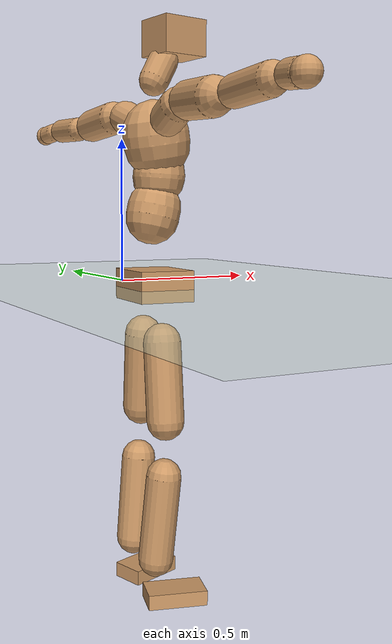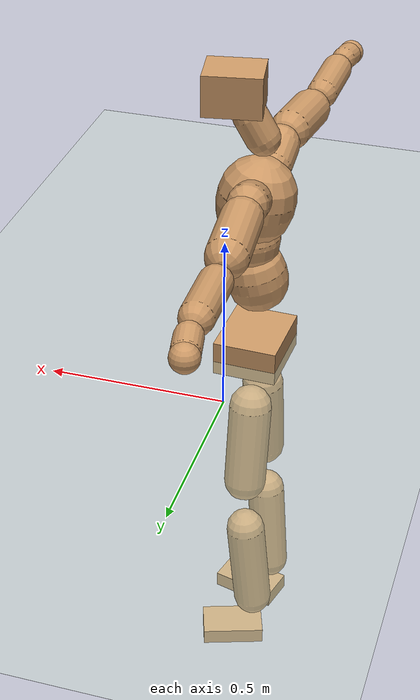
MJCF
<mujoco model="humanoid">
  <compiler coordinate="local" angle="radian"/>
  <default>
    <joint damping="0.0" armature="0.01" stiffness="0.0" limited="true"/>
    <geom conaffinity="1" condim="3" contype="7" margin="0.001" rgba="0.8 0.6 .4 1"/>
  </default>
  <asset>
    <texture type="skybox" builtin="gradient" rgb1=".4 .5 .6" rgb2="0 0 0" width="100" height="100"/>
    <texture builtin="flat" height="1278" mark="cross" markrgb="1 1 1" name="texgeom" random="0.01" rgb1="0.8 0.6 0.4" rgb2="0.8 0.6 0.4" type="cube" width="127"/>
    <texture builtin="checker" height="100" name="texplane" rgb1="0 0 0" rgb2="0.8 0.8 0.8" type="2d" width="100"/>
    <material name="MatPlane" reflectance="0.5" shininess="1" specular="1" texrepeat="60 60" texture="texplane"/>
    <material name="geom" texture="texgeom" texuniform="true"/>
  </asset>
  <worldbody>
    <light cutoff="100" diffuse="1 1 1" dir="-0 0 -1.3" directional="true" exponent="1" pos="0 0 1.3" specular=".1 .1 .1"/>
    <geom conaffinity="1" condim="3" name="floor" pos="0 0 0" rgba="0.8 0.9 0.8 1" size="100 100 .2" type="plane" material="MatPlane"/>
    <body name="Pelvis" pos="-0.0007 -0.2867 0.0171">
      <freejoint name="Pelvis"/>
      <geom type="box" contype="1" conaffinity="1" density="500" pos="-0.0119 0.0005 -0.0089" size="0.0918 0.1094 0.0505" quat="0.9998 0.0000 0.0000 -0.0212" name="Pelvis"/>
      <body name="L_Hip" pos="-0.0214 0.0596 -0.094">
        <joint name="L_Hip_x" type="hinge" pos="0 0 0" axis="1 0 0" stiffness="800" damping="80" armature="0.02" range="-180.0000 180.0000"/>
        <joint name="L_Hip_y" type="hinge" pos="0 0 0" axis="0 1 0" stiffness="800" damping="80" armature="0.02" range="-180.0000 180.0000"/>
        <joint name="L_Hip_z" type="hinge" pos="0 0 0" axis="0 0 1" stiffness="800" damping="80" armature="0.02" range="-180.0000 180.0000"/>
        <geom type="capsule" contype="1" conaffinity="1" density="500" fromto="0.0017 0.0094 -0.0861 0.0067 0.0377 -0.3444" size="0.0618" name="L_Hip"/>
        <body name="L_Knee" pos="0.0084 0.0472 -0.4305">
          <joint name="L_Knee_x" type="hinge" pos="0 0 0" axis="1 0 0" stiffness="800" damping="80" armature="0.02" range="-180.0000 180.0000"/>
          <joint name="L_Knee_y" type="hinge" pos="0 0 0" axis="0 1 0" stiffness="800" damping="80" armature="0.02" range="-180.0000 180.0000"/>
          <joint name="L_Knee_z" type="hinge" pos="0 0 0" axis="0 0 1" stiffness="800" damping="80" armature="0.02" range="-180.0000 180.0000"/>
          <geom type="capsule" contype="1" conaffinity="1" density="500" fromto="-0.0083 -0.0032 -0.0952 -0.0333 -0.0130 -0.3808" size="0.0575" name="L_Knee"/>
          <body name="L_Ankle" pos="-0.0417 -0.0162 -0.476">
            <joint name="L_Ankle_x" type="hinge" pos="0 0 0" axis="1 0 0" stiffness="800" damping="80" armature="0.02" range="-180.0000 180.0000"/>
            <joint name="L_Ankle_y" type="hinge" pos="0 0 0" axis="0 1 0" stiffness="800" damping="80" armature="0.02" range="-180.0000 180.0000"/>
            <joint name="L_Ankle_z" type="hinge" pos="0 0 0" axis="0 0 1" stiffness="800" damping="80" armature="0.02" range="-180.0000 180.0000"/>
            <geom type="box" contype="1" conaffinity="1" density="500" pos="0.0670 0.0228 -0.0337" size="0.0931 0.0558 0.0247" quat="0.9866 0.0000 0.0000 0.1631" name="L_Ankle"/>
            <body name="L_Toe" pos="0.1339 0.0455 -0.0675">
              <joint name="L_Toe_x" type="hinge" pos="0 0 0" axis="1 0 0" stiffness="500" damping="50" armature="0.02" range="-180.0000 180.0000"/>
              <joint name="L_Toe_y" type="hinge" pos="0 0 0" axis="0 1 0" stiffness="500" damping="50" armature="0.02" range="-180.0000 180.0000"/>
              <joint name="L_Toe_z" type="hinge" pos="0 0 0" axis="0 0 1" stiffness="500" damping="50" armature="0.02" range="-180.0000 180.0000"/>
              <geom type="box" contype="1" conaffinity="1" density="500" pos="0.0000 0.0000 0.0351" size="0.0011 0.0026 0.0013" quat="0.9859 0.0000 0.0000 0.1674" name="L_Toe"/>
            </body>
          </body>
        </body>
      </body>
      <body name="R_Hip" pos="-0.0182 -0.0614 -0.1034">
        <joint name="R_Hip_x" type="hinge" pos="0 0 0" axis="1 0 0" stiffness="800" damping="80" armature="0.02" range="-180.0000 180.0000"/>
        <joint name="R_Hip_y" type="hinge" pos="0 0 0" axis="0 1 0" stiffness="800" damping="80" armature="0.02" range="-180.0000 180.0000"/>
        <joint name="R_Hip_z" type="hinge" pos="0 0 0" axis="0 0 1" stiffness="800" damping="80" armature="0.02" range="-180.0000 180.0000"/>
        <geom type="capsule" contype="1" conaffinity="1" density="500" fromto="-0.0008 -0.0102 -0.0860 -0.0032 -0.0409 -0.3441" size="0.0614" name="R_Hip"/>
        <body name="R_Knee" pos="-0.004 -0.0512 -0.4301">
          <joint name="R_Knee_x" type="hinge" pos="0 0 0" axis="1 0 0" stiffness="800" damping="80" armature="0.02" range="-180.0000 180.0000"/>
          <joint name="R_Knee_y" type="hinge" pos="0 0 0" axis="0 1 0" stiffness="800" damping="80" armature="0.02" range="-180.0000 180.0000"/>
          <joint name="R_Knee_z" type="hinge" pos="0 0 0" axis="0 0 1" stiffness="800" damping="80" armature="0.02" range="-180.0000 180.0000"/>
          <geom type="capsule" contype="1" conaffinity="1" density="500" fromto="-0.0075 0.0045 -0.0945 -0.0299 0.0180 -0.3779" size="0.0575" name="R_Knee"/>
          <body name="R_Ankle" pos="-0.0373 0.0226 -0.4723">
            <joint name="R_Ankle_x" type="hinge" pos="0 0 0" axis="1 0 0" stiffness="800" damping="80" armature="0.02" range="-180.0000 180.0000"/>
            <joint name="R_Ankle_y" type="hinge" pos="0 0 0" axis="0 1 0" stiffness="800" damping="80" armature="0.02" range="-180.0000 180.0000"/>
            <joint name="R_Ankle_z" type="hinge" pos="0 0 0" axis="0 0 1" stiffness="800" damping="80" armature="0.02" range="-180.0000 180.0000"/>
            <geom type="box" contype="1" conaffinity="1" density="500" pos="0.0719 -0.0184 -0.0357" size="0.0988 0.0536 0.0249" quat="0.9922 0.0000 0.0000 -0.1246" name="R_Ankle"/>
            <body name="R_Toe" pos="0.1438 -0.0367 -0.0714">
              <joint name="R_Toe_x" type="hinge" pos="0 0 0" axis="1 0 0" stiffness="500" damping="50" armature="0.02" range="-180.0000 180.0000"/>
              <joint name="R_Toe_y" type="hinge" pos="0 0 0" axis="0 1 0" stiffness="500" damping="50" armature="0.02" range="-180.0000 180.0000"/>
              <joint name="R_Toe_z" type="hinge" pos="0 0 0" axis="0 0 1" stiffness="500" damping="50" armature="0.02" range="-180.0000 180.0000"/>
              <geom type="box" contype="1" conaffinity="1" density="500" pos="0.0000 0.0000 0.0373" size="0.0011 0.0026 0.0013" quat="0.9932 0.0000 0.0000 -0.1166" name="R_Toe"/>
            </body>
          </body>
        </body>
      </body>
      <body name="Torso" pos="-0.0314 0.0048 0.1441">
        <joint name="Torso_x" type="hinge" pos="0 0 0" axis="1 0 0" stiffness="1000" damping="100" armature="0.02" range="-180.0000 180.0000"/>
        <joint name="Torso_y" type="hinge" pos="0 0 0" axis="0 1 0" stiffness="1000" damping="100" armature="0.02" range="-180.0000 180.0000"/>
        <joint name="Torso_z" type="hinge" pos="0 0 0" axis="0 0 1" stiffness="1000" damping="100" armature="0.02" range="-180.0000 180.0000"/>
        <geom type="capsule" contype="1" conaffinity="1" density="500" fromto="0.0232 0.0038 0.0999 0.0154 0.0025 0.0666" size="0.0878" name="Torso"/>
        <body name="Spine" pos="0.0386 0.0064 0.1665">
          <joint name="Spine_x" type="hinge" pos="0 0 0" axis="1 0 0" stiffness="1000" damping="100" armature="0.02" range="-180.0000 180.0000"/>
          <joint name="Spine_y" type="hinge" pos="0 0 0" axis="0 1 0" stiffness="1000" damping="100" armature="0.02" range="-180.0000 180.0000"/>
          <joint name="Spine_z" type="hinge" pos="0 0 0" axis="0 0 1" stiffness="1000" damping="100" armature="0.02" range="-180.0000 180.0000"/>
          <geom type="capsule" contype="1" conaffinity="1" density="500" fromto="0.0019 -0.0022 0.0407 0.0012 -0.0015 0.0271" size="0.0856" name="Spine"/>
          <body name="Chest" pos="0.0031 -0.0037 0.0678">
            <joint name="Chest_x" type="hinge" pos="0 0 0" axis="1 0 0" stiffness="1000" damping="100" armature="0.02" range="-180.0000 180.0000"/>
            <joint name="Chest_y" type="hinge" pos="0 0 0" axis="0 1 0" stiffness="1000" damping="100" armature="0.02" range="-180.0000 180.0000"/>
            <joint name="Chest_z" type="hinge" pos="0 0 0" axis="0 0 1" stiffness="1000" damping="100" armature="0.02" range="-180.0000 180.0000"/>
            <geom type="capsule" contype="1" conaffinity="1" density="500" fromto="-0.0183 -0.0055 0.1004 -0.0122 -0.0037 0.0669" size="0.1092" name="Chest"/>
            <body name="Neck" pos="-0.0391 -0.0147 0.245">
              <joint name="Neck_x" type="hinge" pos="0 0 0" axis="1 0 0" stiffness="500" damping="50" armature="0.02" range="-180.0000 180.0000"/>
              <joint name="Neck_y" type="hinge" pos="0 0 0" axis="0 1 0" stiffness="500" damping="50" armature="0.02" range="-180.0000 180.0000"/>
              <joint name="Neck_z" type="hinge" pos="0 0 0" axis="0 0 1" stiffness="500" damping="50" armature="0.02" range="-180.0000 180.0000"/>
              <geom type="capsule" contype="1" conaffinity="1" density="500" fromto="0.0117 0.0016 0.0209 0.0467 0.0065 0.0836" size="0.0485" name="Neck"/>
              <body name="Head" pos="0.0584 0.0081 0.1045">
                <joint name="Head_x" type="hinge" pos="0 0 0" axis="1 0 0" stiffness="500" damping="50" armature="0.02" range="-180.0000 180.0000"/>
                <joint name="Head_y" type="hinge" pos="0 0 0" axis="0 1 0" stiffness="500" damping="50" armature="0.02" range="-180.0000 180.0000"/>
                <joint name="Head_z" type="hinge" pos="0 0 0" axis="0 0 1" stiffness="500" damping="50" armature="0.02" range="-180.0000 180.0000"/>
                <geom type="box" contype="1" conaffinity="1" density="500" pos="0.0302 0.0051 0.0533" size="0.0805 0.0658 0.0577" quat="0.9966 0.0000 0.0000 0.0829" name="Head"/>
              </body>
            </body>
            <body name="L_Thorax" pos="-0.0251 0.0764 0.129">
              <joint name="L_Thorax_x" type="hinge" pos="0 0 0" axis="1 0 0" stiffness="500" damping="50" armature="0.02" range="-180.0000 180.0000"/>
              <joint name="L_Thorax_y" type="hinge" pos="0 0 0" axis="0 1 0" stiffness="500" damping="50" armature="0.02" range="-180.0000 180.0000"/>
              <joint name="L_Thorax_z" type="hinge" pos="0 0 0" axis="0 0 1" stiffness="500" damping="50" armature="0.02" range="-180.0000 180.0000"/>
              <geom type="capsule" contype="1" conaffinity="1" density="500" fromto="-0.0037 0.0250 0.0098 -0.0149 0.1001 0.0393" size="0.0557" name="L_Thorax"/>
              <body name="L_Shoulder" pos="-0.0186 0.1251 0.0491">
                <joint name="L_Shoulder_x" type="hinge" pos="0 0 0" axis="1 0 0" stiffness="500" damping="50" armature="0.02" range="-720.0000 720.0000"/>
                <joint name="L_Shoulder_y" type="hinge" pos="0 0 0" axis="0 1 0" stiffness="500" damping="50" armature="0.02" range="-720.0000 720.0000"/>
                <joint name="L_Shoulder_z" type="hinge" pos="0 0 0" axis="0 0 1" stiffness="500" damping="50" armature="0.02" range="-720.0000 720.0000"/>
                <geom type="capsule" contype="1" conaffinity="1" density="500" fromto="-0.0040 0.0584 -0.0039 -0.0161 0.2338 -0.0157" size="0.0566" name="L_Shoulder"/>
                <body name="L_Elbow" pos="-0.0201 0.2922 -0.0197">
                  <joint name="L_Elbow_x" type="hinge" pos="0 0 0" axis="1 0 0" stiffness="500" damping="50" armature="0.02" range="-720.0000 720.0000"/>
                  <joint name="L_Elbow_y" type="hinge" pos="0 0 0" axis="0 1 0" stiffness="500" damping="50" armature="0.02" range="-720.0000 720.0000"/>
                  <joint name="L_Elbow_z" type="hinge" pos="0 0 0" axis="0 0 1" stiffness="500" damping="50" armature="0.02" range="-720.0000 720.0000"/>
                  <geom type="capsule" contype="1" conaffinity="1" density="500" fromto="-0.0020 0.0572 0.0024 -0.0080 0.2289 0.0097" size="0.044" name="L_Elbow"/>
                  <body name="L_Wrist" pos="-0.01 0.2861 0.0121">
                    <joint name="L_Wrist_x" type="hinge" pos="0 0 0" axis="1 0 0" stiffness="300" damping="30" armature="0.02" range="-180.0000 180.0000"/>
                    <joint name="L_Wrist_y" type="hinge" pos="0 0 0" axis="0 1 0" stiffness="300" damping="30" armature="0.02" range="-180.0000 180.0000"/>
                    <joint name="L_Wrist_z" type="hinge" pos="0 0 0" axis="0 0 1" stiffness="300" damping="30" armature="0.02" range="-180.0000 180.0000"/>
                    <geom type="capsule" contype="1" conaffinity="1" density="500" fromto="-0.0033 0.0180 -0.0021 -0.0130 0.0720 -0.0085" size="0.0357" name="L_Wrist"/>
                    <body name="L_Hand" pos="-0.0163 0.09 -0.0106">
                      <joint name="L_Hand_x" type="hinge" pos="0 0 0" axis="1 0 0" stiffness="300" damping="30" armature="0.02" range="-180.0000 180.0000"/>
                      <joint name="L_Hand_y" type="hinge" pos="0 0 0" axis="0 1 0" stiffness="300" damping="30" armature="0.02" range="-180.0000 180.0000"/>
                      <joint name="L_Hand_z" type="hinge" pos="0 0 0" axis="0 0 1" stiffness="300" damping="30" armature="0.02" range="-180.0000 180.0000"/>
                      <geom type="sphere" contype="1" conaffinity="1" density="500" size="0.0370" pos="0.0000 0.0000 0.0000" name="L_Hand"/>
                    </body>
                  </body>
                </body>
              </body>
            </body>
            <body name="R_Thorax" pos="-0.0275 -0.0893 0.1279">
              <joint name="R_Thorax_x" type="hinge" pos="0 0 0" axis="1 0 0" stiffness="500" damping="50" armature="0.02" range="-180.0000 180.0000"/>
              <joint name="R_Thorax_y" type="hinge" pos="0 0 0" axis="0 1 0" stiffness="500" damping="50" armature="0.02" range="-180.0000 180.0000"/>
              <joint name="R_Thorax_z" type="hinge" pos="0 0 0" axis="0 0 1" stiffness="500" damping="50" armature="0.02" range="-180.0000 180.0000"/>
              <geom type="capsule" contype="1" conaffinity="1" density="500" fromto="-0.0013 -0.0235 0.0101 -0.0050 -0.0941 0.0405" size="0.0561" name="R_Thorax"/>
              <body name="R_Shoulder" pos="-0.0063 -0.1176 0.0506">
                <joint name="R_Shoulder_x" type="hinge" pos="0 0 0" axis="1 0 0" stiffness="500" damping="50" armature="0.02" range="-720.0000 720.0000"/>
                <joint name="R_Shoulder_y" type="hinge" pos="0 0 0" axis="0 1 0" stiffness="500" damping="50" armature="0.02" range="-720.0000 720.0000"/>
                <joint name="R_Shoulder_z" type="hinge" pos="0 0 0" axis="0 0 1" stiffness="500" damping="50" armature="0.02" range="-720.0000 720.0000"/>
                <geom type="capsule" contype="1" conaffinity="1" density="500" fromto="-0.0056 -0.0585 -0.0039 -0.0226 -0.2340 -0.0155" size="0.0583" name="R_Shoulder"/>
                <body name="R_Elbow" pos="-0.0282 -0.2925 -0.0194">
                  <joint name="R_Elbow_x" type="hinge" pos="0 0 0" axis="1 0 0" stiffness="500" damping="50" armature="0.02" range="-720.0000 720.0000"/>
                  <joint name="R_Elbow_y" type="hinge" pos="0 0 0" axis="0 1 0" stiffness="500" damping="50" armature="0.02" range="-720.0000 720.0000"/>
                  <joint name="R_Elbow_z" type="hinge" pos="0 0 0" axis="0 0 1" stiffness="500" damping="50" armature="0.02" range="-720.0000 720.0000"/>
                  <geom type="capsule" contype="1" conaffinity="1" density="500" fromto="-0.0019 -0.0590 0.0021 -0.0074 -0.2359 0.0083" size="0.0453" name="R_Elbow"/>
                  <body name="R_Wrist" pos="-0.0093 -0.2949 0.0104">
                    <joint name="R_Wrist_x" type="hinge" pos="0 0 0" axis="1 0 0" stiffness="300" damping="30" armature="0.02" range="-180.0000 180.0000"/>
                    <joint name="R_Wrist_y" type="hinge" pos="0 0 0" axis="0 1 0" stiffness="300" damping="30" armature="0.02" range="-180.0000 180.0000"/>
                    <joint name="R_Wrist_z" type="hinge" pos="0 0 0" axis="0 0 1" stiffness="300" damping="30" armature="0.02" range="-180.0000 180.0000"/>
                    <geom type="capsule" contype="1" conaffinity="1" density="500" fromto="-0.0021 -0.0187 -0.0017 -0.0083 -0.0746 -0.0069" size="0.0367" name="R_Wrist"/>
                    <body name="R_Hand" pos="-0.0103 -0.0933 -0.0086">
                      <joint name="R_Hand_x" type="hinge" pos="0 0 0" axis="1 0 0" stiffness="300" damping="30" armature="0.02" range="-180.0000 180.0000"/>
                      <joint name="R_Hand_y" type="hinge" pos="0 0 0" axis="0 1 0" stiffness="300" damping="30" armature="0.02" range="-180.0000 180.0000"/>
                      <joint name="R_Hand_z" type="hinge" pos="0 0 0" axis="0 0 1" stiffness="300" damping="30" armature="0.02" range="-180.0000 180.0000"/>
                      <geom type="sphere" contype="1" conaffinity="1" density="500" size="0.0380" pos="0.0000 0.0000 0.0000" name="R_Hand"/>
                    </body>
                  </body>
                </body>
              </body>
            </body>
          </body>
        </body>
      </body>
    </body>
  </worldbody>
  <actuator>
    <motor name="L_Hip_x" joint="L_Hip_x" gear="500"/>
    <motor name="L_Hip_y" joint="L_Hip_y" gear="500"/>
    <motor name="L_Hip_z" joint="L_Hip_z" gear="500"/>
    <motor name="L_Knee_x" joint="L_Knee_x" gear="500"/>
    <motor name="L_Knee_y" joint="L_Knee_y" gear="500"/>
    <motor name="L_Knee_z" joint="L_Knee_z" gear="500"/>
    <motor name="L_Ankle_x" joint="L_Ankle_x" gear="500"/>
    <motor name="L_Ankle_y" joint="L_Ankle_y" gear="500"/>
    <motor name="L_Ankle_z" joint="L_Ankle_z" gear="500"/>
    <motor name="L_Toe_x" joint="L_Toe_x" gear="500"/>
    <motor name="L_Toe_y" joint="L_Toe_y" gear="500"/>
    <motor name="L_Toe_z" joint="L_Toe_z" gear="500"/>
    <motor name="R_Hip_x" joint="R_Hip_x" gear="500"/>
    <motor name="R_Hip_y" joint="R_Hip_y" gear="500"/>
    <motor name="R_Hip_z" joint="R_Hip_z" gear="500"/>
    <motor name="R_Knee_x" joint="R_Knee_x" gear="500"/>
    <motor name="R_Knee_y" joint="R_Knee_y" gear="500"/>
    <motor name="R_Knee_z" joint="R_Knee_z" gear="500"/>
    <motor name="R_Ankle_x" joint="R_Ankle_x" gear="500"/>
    <motor name="R_Ankle_y" joint="R_Ankle_y" gear="500"/>
    <motor name="R_Ankle_z" joint="R_Ankle_z" gear="500"/>
    <motor name="R_Toe_x" joint="R_Toe_x" gear="500"/>
    <motor name="R_Toe_y" joint="R_Toe_y" gear="500"/>
    <motor name="R_Toe_z" joint="R_Toe_z" gear="500"/>
    <motor name="Torso_x" joint="Torso_x" gear="500"/>
    <motor name="Torso_y" joint="Torso_y" gear="500"/>
    <motor name="Torso_z" joint="Torso_z" gear="500"/>
    <motor name="Spine_x" joint="Spine_x" gear="500"/>
    <motor name="Spine_y" joint="Spine_y" gear="500"/>
    <motor name="Spine_z" joint="Spine_z" gear="500"/>
    <motor name="Chest_x" joint="Chest_x" gear="500"/>
    <motor name="Chest_y" joint="Chest_y" gear="500"/>
    <motor name="Chest_z" joint="Chest_z" gear="500"/>
    <motor name="Neck_x" joint="Neck_x" gear="500"/>
    <motor name="Neck_y" joint="Neck_y" gear="500"/>
    <motor name="Neck_z" joint="Neck_z" gear="500"/>
    <motor name="Head_x" joint="Head_x" gear="500"/>
    <motor name="Head_y" joint="Head_y" gear="500"/>
    <motor name="Head_z" joint="Head_z" gear="500"/>
    <motor name="L_Thorax_x" joint="L_Thorax_x" gear="500"/>
    <motor name="L_Thorax_y" joint="L_Thorax_y" gear="500"/>
    <motor name="L_Thorax_z" joint="L_Thorax_z" gear="500"/>
    <motor name="L_Shoulder_x" joint="L_Shoulder_x" gear="500"/>
    <motor name="L_Shoulder_y" joint="L_Shoulder_y" gear="500"/>
    <motor name="L_Shoulder_z" joint="L_Shoulder_z" gear="500"/>
    <motor name="L_Elbow_x" joint="L_Elbow_x" gear="500"/>
    <motor name="L_Elbow_y" joint="L_Elbow_y" gear="500"/>
    <motor name="L_Elbow_z" joint="L_Elbow_z" gear="500"/>
    <motor name="L_Wrist_x" joint="L_Wrist_x" gear="500"/>
    <motor name="L_Wrist_y" joint="L_Wrist_y" gear="500"/>
    <motor name="L_Wrist_z" joint="L_Wrist_z" gear="500"/>
    <motor name="L_Hand_x" joint="L_Hand_x" gear="500"/>
    <motor name="L_Hand_y" joint="L_Hand_y" gear="500"/>
    <motor name="L_Hand_z" joint="L_Hand_z" gear="500"/>
    <motor name="R_Thorax_x" joint="R_Thorax_x" gear="500"/>
    <motor name="R_Thorax_y" joint="R_Thorax_y" gear="500"/>
    <motor name="R_Thorax_z" joint="R_Thorax_z" gear="500"/>
    <motor name="R_Shoulder_x" joint="R_Shoulder_x" gear="500"/>
    <motor name="R_Shoulder_y" joint="R_Shoulder_y" gear="500"/>
    <motor name="R_Shoulder_z" joint="R_Shoulder_z" gear="500"/>
    <motor name="R_Elbow_x" joint="R_Elbow_x" gear="500"/>
    <motor name="R_Elbow_y" joint="R_Elbow_y" gear="500"/>
    <motor name="R_Elbow_z" joint="R_Elbow_z" gear="500"/>
    <motor name="R_Wrist_x" joint="R_Wrist_x" gear="500"/>
    <motor name="R_Wrist_y" joint="R_Wrist_y" gear="500"/>
    <motor name="R_Wrist_z" joint="R_Wrist_z" gear="500"/>
    <motor name="R_Hand_x" joint="R_Hand_x" gear="500"/>
    <motor name="R_Hand_y" joint="R_Hand_y" gear="500"/>
    <motor name="R_Hand_z" joint="R_Hand_z" gear="500"/>
  </actuator>
  <contact>
    <exclude body1="Torso" body2="Chest"/>
    <exclude body1="Head" body2="Chest"/>
    <exclude body1="R_Knee" body2="R_Toe"/>
    <exclude body1="R_Knee" body2="L_Ankle"/>
    <exclude body1="R_Knee" body2="L_Toe"/>
    <exclude body1="L_Knee" body2="L_Toe"/>
    <exclude body1="L_Knee" body2="R_Ankle"/>
    <exclude body1="L_Knee" body2="R_Toe"/>
    <exclude body1="L_Shoulder" body2="Chest"/>
    <exclude body1="R_Shoulder" body2="Chest"/>
  </contact>
  <sensor/>
  <size njmax="700" nconmax="700"/>
</mujoco>
